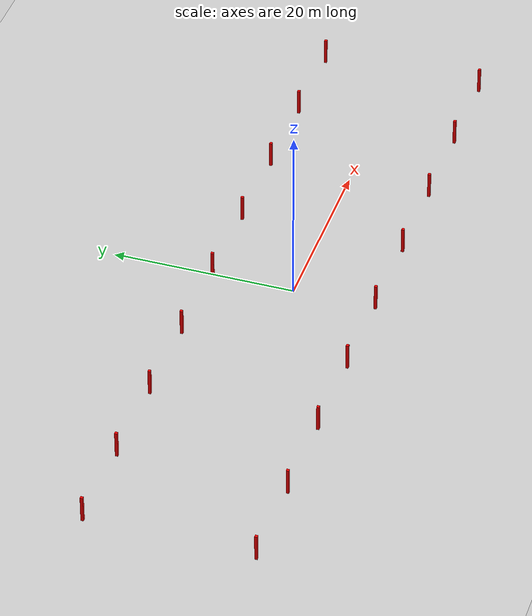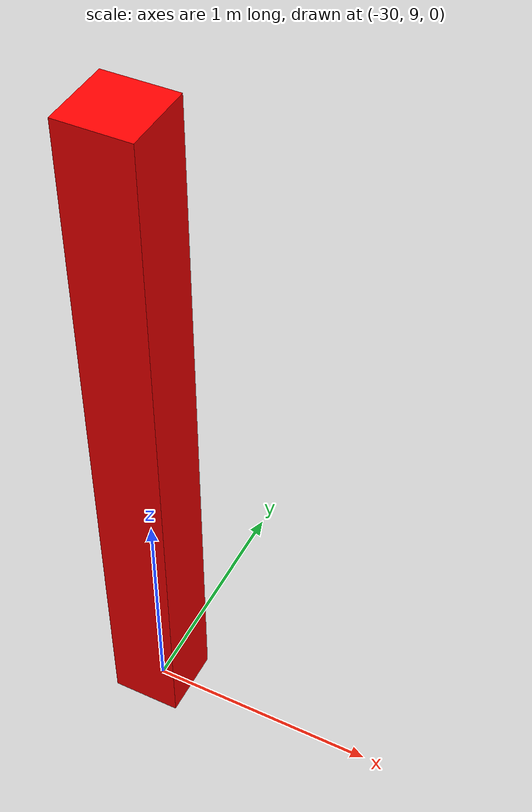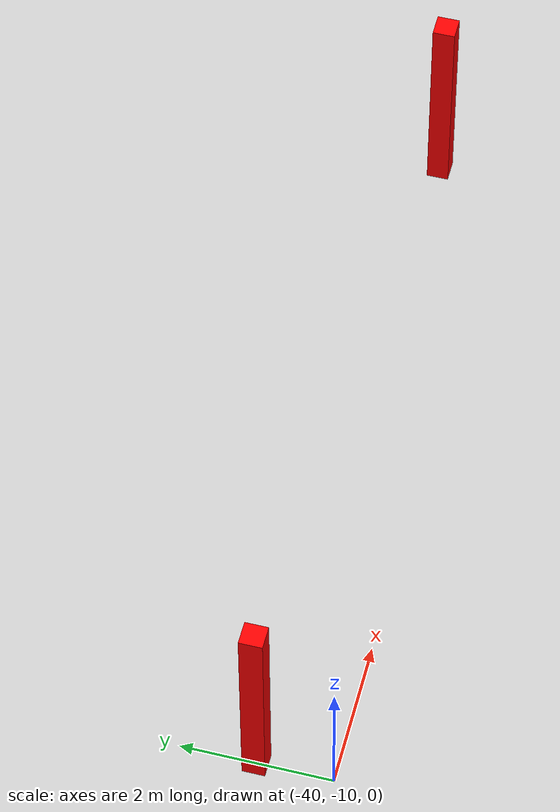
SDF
<sdf version="1.7">
 <world name="default">
  <physics type="ode">
   <max_step_size>0.001</max_step_size>
   <real_time_factor>1</real_time_factor>
   <real_time_update_rate>1000</real_time_update_rate>
   <ode>
    <solver>
     <type>quick</type>
     <iters>50</iters>
     <sor>1.3</sor>
     <use_dynamic_moi_rescaling>0</use_dynamic_moi_rescaling>
    </solver>
    <constraints>
     <cfm>0</cfm>
     <erp>0.2</erp>
     <contact_max_correcting_vel>10</contact_max_correcting_vel>
     <contact_surface_layer>0.001</contact_surface_layer>
    </constraints>
   </ode>
  </physics>
  <scene>
   <sky><clouds><speed>12</speed></clouds></sky>
   <ambient>0.4 0.4 0.4 1</ambient>
   <background>0.7 0.7 0.7 1</background>
   <shadows>1</shadows>
  </scene>
  <light name="sun" type="directional">
   <pose>0 0 10 0 -0 0</pose>
   <diffuse>0.8 0.8 0.8 1</diffuse>
   <specular>0.2 0.2 0.2 1</specular>
   <attenuation>
    <range>1000</range>
    <constant>0.9</constant>
    <linear>0.01</linear>
    <quadratic>0.001</quadratic>
   </attenuation>
   <direction>-0.5 0.1 -0.9</direction>
   <spot><inner_angle>0</inner_angle><outer_angle>0</outer_angle><falloff>0</falloff></spot>
  </light>
  <model name="static_environment">
   <static>1</static>
   <link name="obstacle_ludeng1">
    <pose>0 -9 1.5 0 -0 0</pose>
    <collision name="collision"><geometry><box><size>0.3 0.3 3</size></box></geometry></collision>
    <visual name="visual">
     <geometry><box><size>0.3 0.3 3</size></box></geometry>
     <material>
      <ambient>1 0 0 1</ambient>
      <diffuse>1 0 0 1</diffuse>
      <specular>0 0 0 1</specular>
      <emissive>0.2 0 0 1</emissive>
     </material>
    </visual>
   </link>
   <link name="obstacle_ludeng2">
    <pose>10 -9 1.5 0 -0 0</pose>
    <collision name="collision"><geometry><box><size>0.3 0.3 3</size></box></geometry></collision>
    <visual name="visual">
     <geometry><box><size>0.3 0.3 3</size></box></geometry>
     <material>
      <ambient>1 0 0 1</ambient>
      <diffuse>1 0 0 1</diffuse>
      <specular>0 0 0 1</specular>
      <emissive>0.2 0 0 1</emissive>
     </material>
    </visual>
   </link>
   <link name="obstacle_ludeng3">
    <pose>20 -9 1.5 0 -0 0</pose>
    <collision name="collision"><geometry><box><size>0.3 0.3 3</size></box></geometry></collision>
    <visual name="visual">
     <geometry><box><size>0.3 0.3 3</size></box></geometry>
     <material>
      <ambient>1 0 0 1</ambient>
      <diffuse>1 0 0 1</diffuse>
      <specular>0 0 0 1</specular>
      <emissive>0.2 0 0 1</emissive>
     </material>
    </visual>
   </link>
   <link name="obstacle_ludeng4">
    <pose>30 -9 1.5 0 -0 0</pose>
    <collision name="collision"><geometry><box><size>0.3 0.3 3</size></box></geometry></collision>
    <visual name="visual">
     <geometry><box><size>0.3 0.3 3</size></box></geometry>
     <material>
      <ambient>1 0 0 1</ambient>
      <diffuse>1 0 0 1</diffuse>
      <specular>0 0 0 1</specular>
      <emissive>0.2 0 0 1</emissive>
     </material>
    </visual>
   </link>
   <link name="obstacle_ludeng5">
    <pose>40 -9 1.5 0 -0 0</pose>
    <collision name="collision"><geometry><box><size>0.3 0.3 3</size></box></geometry></collision>
    <visual name="visual">
     <geometry><box><size>0.3 0.3 3</size></box></geometry>
     <material>
      <ambient>1 0 0 1</ambient>
      <diffuse>1 0 0 1</diffuse>
      <specular>0 0 0 1</specular>
      <emissive>0.2 0 0 1</emissive>
     </material>
    </visual>
   </link>
   <link name="obstacle_ludeng6">
    <pose>-10 -9 1.5 0 -0 0</pose>
    <collision name="collision"><geometry><box><size>0.3 0.3 3</size></box></geometry></collision>
    <visual name="visual">
     <geometry><box><size>0.3 0.3 3</size></box></geometry>
     <material>
      <ambient>1 0 0 1</ambient>
      <diffuse>1 0 0 1</diffuse>
      <specular>0 0 0 1</specular>
      <emissive>0.2 0 0 1</emissive>
     </material>
    </visual>
   </link>
   <link name="obstacle_ludeng7">
    <pose>-20 -9 1.5 0 -0 0</pose>
    <collision name="collision"><geometry><box><size>0.3 0.3 3</size></box></geometry></collision>
    <visual name="visual">
     <geometry><box><size>0.3 0.3 3</size></box></geometry>
     <material>
      <ambient>1 0 0 1</ambient>
      <diffuse>1 0 0 1</diffuse>
      <specular>0 0 0 1</specular>
      <emissive>0.2 0 0 1</emissive>
     </material>
    </visual>
   </link>
   <link name="obstacle_ludeng8">
    <pose>-30 -9 1.5 0 -0 0</pose>
    <collision name="collision"><geometry><box><size>0.3 0.3 3</size></box></geometry></collision>
    <visual name="visual">
     <geometry><box><size>0.3 0.3 3</size></box></geometry>
     <material>
      <ambient>1 0 0 1</ambient>
      <diffuse>1 0 0 1</diffuse>
      <specular>0 0 0 1</specular>
      <emissive>0.2 0 0 1</emissive>
     </material>
    </visual>
   </link>
   <link name="obstacle_ludeng9">
    <pose>-40 -9 1.5 0 -0 0</pose>
    <collision name="collision"><geometry><box><size>0.3 0.3 3</size></box></geometry></collision>
    <visual name="visual">
     <geometry><box><size>0.3 0.3 3</size></box></geometry>
     <material>
      <ambient>1 0 0 1</ambient>
      <diffuse>1 0 0 1</diffuse>
      <specular>0 0 0 1</specular>
      <emissive>0.2 0 0 1</emissive>
     </material>
    </visual>
   </link>
   <link name="obstacle_ludeng11">
    <pose>0 9 1.5 0 -0 0</pose>
    <collision name="collision"><geometry><box><size>0.3 0.3 3</size></box></geometry></collision>
    <visual name="visual">
     <geometry><box><size>0.3 0.3 3</size></box></geometry>
     <material>
      <ambient>1 0 0 1</ambient>
      <diffuse>1 0 0 1</diffuse>
      <specular>0 0 0 1</specular>
      <emissive>0.2 0 0 1</emissive>
     </material>
    </visual>
   </link>
   <link name="obstacle_ludeng22">
    <pose>10 9 1.5 0 -0 0</pose>
    <collision name="collision"><geometry><box><size>0.3 0.3 3</size></box></geometry></collision>
    <visual name="visual">
     <geometry><box><size>0.3 0.3 3</size></box></geometry>
     <material>
      <ambient>1 0 0 1</ambient>
      <diffuse>1 0 0 1</diffuse>
      <specular>0 0 0 1</specular>
      <emissive>0.2 0 0 1</emissive>
     </material>
    </visual>
   </link>
   <link name="obstacle_ludeng33">
    <pose>20 9 1.5 0 -0 0</pose>
    <collision name="collision"><geometry><box><size>0.3 0.3 3</size></box></geometry></collision>
    <visual name="visual">
     <geometry><box><size>0.3 0.3 3</size></box></geometry>
     <material>
      <ambient>1 0 0 1</ambient>
      <diffuse>1 0 0 1</diffuse>
      <specular>0 0 0 1</specular>
      <emissive>0.2 0 0 1</emissive>
     </material>
    </visual>
   </link>
   <link name="obstacle_ludeng44">
    <pose>30 9 1.5 0 -0 0</pose>
    <collision name="collision"><geometry><box><size>0.3 0.3 3</size></box></geometry></collision>
    <visual name="visual">
     <geometry><box><size>0.3 0.3 3</size></box></geometry>
     <material>
      <ambient>1 0 0 1</ambient>
      <diffuse>1 0 0 1</diffuse>
      <specular>0 0 0 1</specular>
      <emissive>0.2 0 0 1</emissive>
     </material>
    </visual>
   </link>
   <link name="obstacle_ludeng55">
    <pose>40 9 1.5 0 -0 0</pose>
    <collision name="collision"><geometry><box><size>0.3 0.3 3</size></box></geometry></collision>
    <visual name="visual">
     <geometry><box><size>0.3 0.3 3</size></box></geometry>
     <material>
      <ambient>1 0 0 1</ambient>
      <diffuse>1 0 0 1</diffuse>
      <specular>0 0 0 1</specular>
      <emissive>0.2 0 0 1</emissive>
     </material>
    </visual>
   </link>
   <link name="obstacle_ludeng66">
    <pose>-10 9 1.5 0 -0 0</pose>
    <collision name="collision"><geometry><box><size>0.3 0.3 3</size></box></geometry></collision>
    <visual name="visual">
     <geometry><box><size>0.3 0.3 3</size></box></geometry>
     <material>
      <ambient>1 0 0 1</ambient>
      <diffuse>1 0 0 1</diffuse>
      <specular>0 0 0 1</specular>
      <emissive>0.2 0 0 1</emissive>
     </material>
    </visual>
   </link>
   <link name="obstacle_ludeng77">
    <pose>-20 9 1.5 0 -0 0</pose>
    <collision name="collision"><geometry><box><size>0.3 0.3 3</size></box></geometry></collision>
    <visual name="visual">
     <geometry><box><size>0.3 0.3 3</size></box></geometry>
     <material>
      <ambient>1 0 0 1</ambient>
      <diffuse>1 0 0 1</diffuse>
      <specular>0 0 0 1</specular>
      <emissive>0.2 0 0 1</emissive>
     </material>
    </visual>
   </link>
   <link name="obstacle_ludeng88">
    <pose>-30 9 1.5 0 -0 0</pose>
    <collision name="collision"><geometry><box><size>0.3 0.3 3</size></box></geometry></collision>
    <visual name="visual">
     <geometry><box><size>0.3 0.3 3</size></box></geometry>
     <material>
      <ambient>1 0 0 1</ambient>
      <diffuse>1 0 0 1</diffuse>
      <specular>0 0 0 1</specular>
      <emissive>0.2 0 0 1</emissive>
     </material>
    </visual>
   </link>
   <link name="obstacle_ludeng99">
    <pose>-40 9 1.5 0 -0 0</pose>
    <collision name="collision"><geometry><box><size>0.3 0.3 3</size></box></geometry></collision>
    <visual name="visual">
     <geometry><box><size>0.3 0.3 3</size></box></geometry>
     <material>
      <ambient>1 0 0 1</ambient>
      <diffuse>1 0 0 1</diffuse>
      <specular>0 0 0 1</specular>
      <emissive>0.2 0 0 1</emissive>
     </material>
    </visual>
   </link>
  </model>
  <gravity>0 0 -9.81</gravity>
  <magnetic_field>6e-06 2.3e-05 -4.2e-05</magnetic_field>
  <atmosphere type="adiabatic"/>
  <spherical_coordinates>
   <surface_model>EARTH_WGS84</surface_model>
   <latitude_deg>0</latitude_deg>
   <longitude_deg>0</longitude_deg>
   <elevation>0</elevation>
   <heading_deg>0</heading_deg>
  </spherical_coordinates>
  <model name="ground_plane">
   <static>1</static>
   <link name="link">
    <collision name="collision">
     <geometry><plane><normal>0 0 1</normal><size>100 100</size></plane></geometry>
     <surface><friction><ode><mu>100</mu><mu2>50</mu2></ode></friction></surface>
    </collision>
    <visual name="visual">
     <cast_shadows>0</cast_shadows>
     <geometry><plane><normal>0 0 1</normal><size>100 100</size></plane></geometry>
     <material>
      <script><uri>file://media/materials/scripts/gazebo.material</uri><name>Gazebo/Grey</name></script>
     </material>
    </visual>
   </link>
  </model>
 </world>
</sdf>
